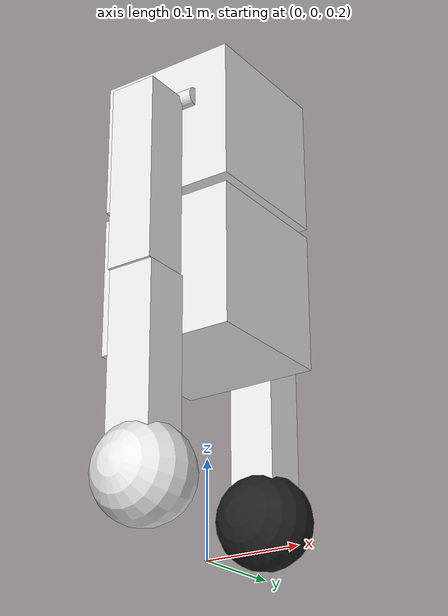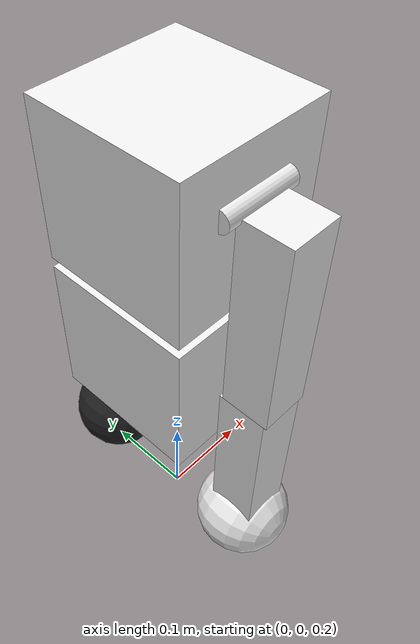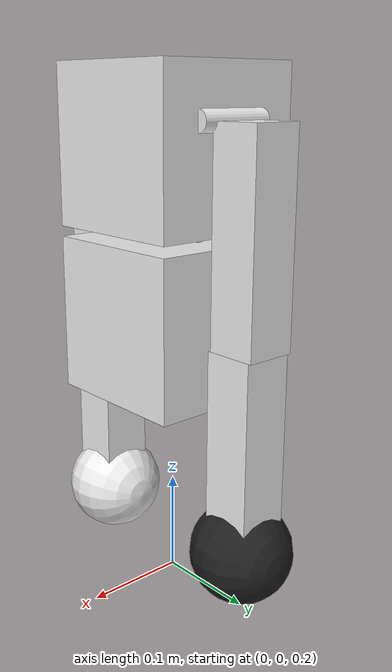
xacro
<?xml version="1.0"?>
<robot name = "human" xmlns:xacro="http://www.ros.org/wiki/xacro">

<xacro:property name ="PI" value ="3.1415926535897931"/>
<xacro:property name ="body_mass" value ="10" />
<xacro:property name ="upperarm_mass" value ="5" />
<xacro:property name ="a" value ="0.15" />
<xacro:property name ="b" value ="0.15" />
<xacro:property name ="c" value ="0.15" />
<xacro:property name ="Lc" value = "0.4" />

<xacro:include filename="/home/zheng/robot_ws_zheng/src/ur_description/urdf/simplehumanArm.urdf.xacro" />

<!-- **************************** Joint Properties ********************************* -->

<joint name="world_joint" type="fixed">
    <parent link = "world"/>
    <child link="base_corps_link_1"/>
    <origin rpy ="0. 0. 0." xyz = "0. 0. ${Lc}"/>
</joint>

<joint name="joint_chest_z" type="revolute">
    <parent link = "base_corps_link_1"/>
    <child link="link_virtual"/>
    <origin rpy ="0. 0. 0." xyz = "0.0 0.0 ${c+0.01}"/>
    <axis xyz="0 0 1"/>
    <limit lower="-${PI/2}" upper="${PI/2}" effort="100.0" velocity="10.0"/>

</joint>

<joint name="joint_chest_y" type="revolute">
    <parent link = "link_virtual"/>
    <child link="base_corps_link_2"/>
    <origin rpy ="0. 0. 0." xyz = "0.0 0.0 0."/>
    <axis xyz="0 1 0"/>
    <limit lower="-1.57" upper="1.57" effort="100.0" velocity="10.0"/>

</joint>

<!-- **************************** Link Properties ********************************* -->

<link name="world"/>

<link name="base_corps_link_1">
  <visual>
    <geometry>
      <box size="${a} ${b} ${c}"/>
    </geometry>
    <origin xyz="0.0 0.0 ${c/2}" rpy="0.0 0.0 0.0"/>
  </visual>

  <collision>
    <origin xyz="0.0 0.0 ${c/2}" rpy="0.0 0.0 0.0"/>
    <geometry>
      <box size="${a} ${b} ${c}"/>
    </geometry>
  </collision>

  <inertial>
    <mass value="${body_mass}"/>
    <inertia ixx="${body_mass / 12.0 * (b*b + c*c)}" ixy="0.0" ixz="0.0"
             iyy="${body_mass / 12.0 * (a*a + c*c)}" iyz="0.0"
             izz= "${body_mass / 12.0 * (a*a + b*b)}"/>
  </inertial>
</link>

<link name="link_virtual">
  <visual>
    <geometry>
      <cylinder radius="0.01" length="0.075"/>
    </geometry>
    <origin xyz="0.0 0.0 0.0" rpy="-1.57 0.0 0.0"/>
  </visual>
  <inertial>
    <mass value="0.01"/>
    <inertia ixx="0.01" ixy="0.0" ixz="0.0" iyy="0.01" iyz="0.0" izz="0.01"/>
  </inertial>
</link>

<link name="base_corps_link_2">
  <visual>
    <geometry>
      <box size=" ${a}  ${b}  ${c}"/>
    </geometry>
    <origin xyz="0. 0. ${c/2}" rpy="0.0 0.0 0.0"/>
  </visual>

  <collision>
    <origin xyz="0. 0.  ${c/2}" rpy="0.0 0.0 0.0"/>
    <geometry>
      <box size="${a} ${b} ${c}"/>
    </geometry>
  </collision>

  <inertial>
    <mass value="${body_mass}"/>
    <inertia ixx="${body_mass / 12.0 * (b*b + c*c)}" ixy="0.0" ixz="0.0"
             iyy="${body_mass / 12.0 * (a*a + c*c)}" iyz="0.0"
             izz= "${body_mass / 12.0 * (a*a + b*b)}"/>
  </inertial>
</link>

    <!-- Import gazebo element -->
    <gazebo reference="base_corps_link_1">
        <material>Gazebo/White</material>
    </gazebo>
    <gazebo reference="link_virtual">
        <material>Gazebo/White</material>
    </gazebo>
    <gazebo reference="base_corps_link_2">
        <material>Gazebo/White</material>
    </gazebo>

     <transmission name="tran1">
    <type>transmission_interface/SimpleTransmission</type>
    <joint name="joint_chest_z">
      <hardwareInterface>hardware_interface/PositionJointInterface</hardwareInterface>
    </joint>
    <actuator name="motor1">
      <hardwareInterface>hardware_interface/PositionJointInterface</hardwareInterface>
      <mechanicalReduction>1</mechanicalReduction>
    </actuator>
  </transmission>

  <transmission name="tran2">
    <type>transmission_interface/SimpleTransmission</type>
    <joint name="joint_chest_y">
      <hardwareInterface>hardware_interface/PositionJointInterface</hardwareInterface>
    </joint>
    <actuator name="motor2">
      <hardwareInterface>hardware_interface/PositionJointInterface</hardwareInterface>
      <mechanicalReduction>1</mechanicalReduction>
    </actuator>
  </transmission>
</robot>

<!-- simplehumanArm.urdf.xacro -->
<!-- An very simplyfied human upper-body -->

<robot name = "human_arm" xmlns:xacro="http://www.ros.org/wiki/xacro">
 <!-- Constants for human dimension-->

    <xacro:property name ="forearm_mass" value ="5" />
    <xacro:property name ="hand_mass" value ="3" />
    <xacro:property name ="arm_a" value ="0.2" />
    <xacro:property name ="arm_b" value ="0.05" />
    <xacro:property name ="arm_c" value ="0.05" />

    <xacro:property name ="L1" value ="0.2" />

    <!-- **************************** Joint Properties ********************************* -->

<joint name="joint1" type="revolute">
  <origin xyz="0.00 ${b/2} ${c - 0.05}" rpy="0. ${PI/2} 0.0"/>
  <parent link="base_corps_link_2"/>
  <child link="left_shoulder_psi_link"/>
  <axis xyz="0 0 1"/>
  <limit lower="-${PI/2}" upper="${PI/2}" effort="100.0" velocity="10.0"/>
</joint>

<joint name="joint2" type="revolute">
  <origin xyz="0.0 0. 0." rpy="0. 0. 0.0"/>
  <parent link="left_shoulder_psi_link"/>
  <child link="left_arm_shoulder"/>
  <axis xyz="0 -1 0"/>
  <limit lower="-${PI/2}" upper="${PI/2}" effort="100.0" velocity="10.0"/>
</joint>

<joint name="joint3" type="revolute">
  <origin xyz="${L1} 0.025 0." rpy="${PI/2} 0. 0.0"/>
  <parent link="left_arm_shoulder"/>
  <child link="left_forearm"/>
  <axis xyz="0 0 1"/>
  <limit lower="-${PI/2}" upper="${PI/2}" effort="100.0" velocity="10.0"/>
</joint>

<joint name="joint4" type="fixed">
    <parent link = "left_forearm"/>
    <child link="left_hand"/>
    <origin rpy ="0 0. 0." xyz = "${arm_a} 0.0 0."/>
</joint>

<!-- **************************** Link Properties ********************************* -->

<link name="left_shoulder_psi_link" >
  <visual>
    <geometry>
      <cylinder radius="0.01" length="0.075"/>
    </geometry>
    <origin xyz="0.0 0.0 0.0" rpy="0 0.0 0.0"/>
  </visual>
  <inertial>
    <mass value="0.01"/>
    <inertia ixx="0.01" ixy="0.0" ixz="0.0" iyy="0.01" iyz="0.0" izz="0.01"/>
  </inertial>
</link>

<link name="left_arm_shoulder">
  <visual>
    <geometry>
      <box size="${arm_a} ${arm_b} ${arm_c}"/>
    </geometry>
    <origin xyz="0.1 0.03 0" rpy="0.0 0.0 0.0"/>
  </visual>

  <collision>
    <geometry>
      <box size="${arm_a} ${arm_b} ${arm_c}"/>
    </geometry>
    <origin xyz="0.1 0.03 0" rpy="0.0 0.0 0.0"/>
  </collision>
  <inertial>
    <mass value="${forearm_mass}"/>
    <inertia ixx="${forearm_mass / 12.0 * (arm_b*arm_b + arm_c*arm_c)}" ixy="0.0" ixz="0.0"
             iyy="${forearm_mass / 12.0 * (arm_a*arm_a + arm_c*arm_c)}" iyz="0.0"
             izz= "${forearm_mass / 12.0 * (arm_a*arm_a + arm_b*arm_b)}"/>
  </inertial>
</link>

<link name="left_forearm">
  <visual>
    <geometry>
      <box size="${arm_a} ${arm_b} ${arm_c}"/>
    </geometry>
    <origin xyz="0.1 0.0 -0.002" rpy="0.0 0.0 0.0"/>
  </visual>

 <inertial>
    <mass value="${forearm_mass}"/>
    <inertia ixx="${forearm_mass / 12.0 * (arm_b*arm_b + arm_c*arm_c)}" ixy="0.0" ixz="0.0"
             iyy="${forearm_mass / 12.0 * (arm_a*arm_a + arm_c*arm_c)}" iyz="0.0"
             izz= "${forearm_mass / 12.0 * (arm_a*arm_a + arm_b*arm_b)}"/>
  </inertial>

  <collision>
    <geometry>
      <box size="${arm_a} ${arm_b} ${arm_c}"/>
    </geometry>
    <origin xyz="0.1 0.0 -0.002" rpy="0.0 0.0 0.0"/>
  </collision>
</link>

<link name="left_hand">
  <visual>
    <geometry>
      <sphere radius="0.05"/>
    </geometry>
    <origin xyz="0. 0.0 0.0" rpy="0.0 0.0 0.0"/>
  </visual>

 <inertial>
    <mass value="${hand_mass}"/>
    <inertia ixx="${2/5 * hand_mass*0.05*0.05}" ixy="0.0" ixz="0.0"
             iyy="${2/5 * hand_mass*0.05*0.05}" iyz="0.0"
             izz= "${2/5 * hand_mass*0.05*0.05}"/>
  </inertial>

  <collision>
    <geometry>
      <sphere radius="0.05"/>
    </geometry>
    <origin xyz="0. 0.0 0.0" rpy="0.0 0.0 0.0"/>
  </collision>
</link>

    <!-- Import gazebo element -->

    <gazebo reference="left_shoulder_psi_link">
        <material>Gazebo/White</material>
    </gazebo>
    <gazebo reference="left_arm_shoulder">
        <material>Gazebo/White</material>
    </gazebo>
    <gazebo reference="left_forearm">
        <material>Gazebo/White</material>
    </gazebo>

    <gazebo reference="left_hand">
        <material>Gazebo/Black</material>
    </gazebo>

     <!-- **************************** Joint Properties ********************************* -->

<joint name="joint5" type="revolute">
  <origin xyz="0.00 -${b/2} ${c - 0.05}" rpy="${PI} ${PI/2} 0.0"/>
  <parent link="base_corps_link_2"/>
  <child link="right_shoulder_psi_link"/>
  <axis xyz="0 0 1"/>
  <limit lower="-${PI/2}" upper="${PI/2}" effort="100.0" velocity="10.0"/>
</joint>

<joint name="joint6" type="revolute">
  <origin xyz="0.0 0. 0." rpy="0. 0. 0.0"/>
  <parent link="right_shoulder_psi_link"/>
  <child link="right_arm_shoulder"/>
  <axis xyz="0 1 0"/>
  <limit lower="-${PI/2}" upper="${PI/2}" effort="100.0" velocity="10.0"/>
</joint>

<joint name="joint7" type="revolute">
  <origin xyz="${L1} 0.025 0." rpy="${PI/2} 0. 0.0"/>
  <parent link="right_arm_shoulder"/>
  <child link="right_forearm"/>
  <axis xyz="0 0 -1"/>
  <limit lower="-${PI/2}" upper="${PI/2}" effort="100.0" velocity="10.0"/>
</joint>

<joint name="joint8" type="fixed">
    <parent link = "right_forearm"/>
    <child link="right_hand"/>
    <origin rpy ="0 0. 0." xyz = "${arm_a} 0.0 0."/>
</joint>

<!-- **************************** Link Properties ********************************* -->

<link name="right_shoulder_psi_link" >
  <visual>
    <geometry>
      <cylinder radius="0.01" length="0.075"/>
    </geometry>
    <origin xyz="0.0 0.0 0.0" rpy="0 0.0 0.0"/>
  </visual>
  <inertial>
    <mass value="0.01"/>
    <inertia ixx="0.01" ixy="0.0" ixz="0.0" iyy="0.01" iyz="0.0" izz="0.01"/>
  </inertial>
</link>

<link name="right_arm_shoulder">
  <visual>
    <geometry>
      <box size="${arm_a} ${arm_b} ${arm_c}"/>
    </geometry>
    <origin xyz="0.1 0.03 0" rpy="0.0 0.0 0.0"/>
  </visual>

  <collision>
    <geometry>
      <box size="${arm_a} ${arm_b} ${arm_c}"/>
    </geometry>
    <origin xyz="0.1 0.03 0" rpy="0.0 0.0 0.0"/>
  </collision>
  <inertial>
    <mass value="${forearm_mass}"/>
    <inertia ixx="${forearm_mass / 12.0 * (arm_b*arm_b + arm_c*arm_c)}" ixy="0.0" ixz="0.0"
             iyy="${forearm_mass / 12.0 * (arm_a*arm_a + arm_c*arm_c)}" iyz="0.0"
             izz= "${forearm_mass / 12.0 * (arm_a*arm_a + arm_b*arm_b)}"/>
  </inertial>
</link>

<link name="right_forearm">
  <visual>
    <geometry>
      <box size="${arm_a} ${arm_b} ${arm_c}"/>
    </geometry>
    <origin xyz="0.1 0.0 -0.002" rpy="0.0 0.0 0.0"/>
  </visual>

 <inertial>
    <mass value="${forearm_mass}"/>
    <inertia ixx="${forearm_mass / 12.0 * (arm_b*arm_b + arm_c*arm_c)}" ixy="0.0" ixz="0.0"
             iyy="${forearm_mass / 12.0 * (arm_a*arm_a + arm_c*arm_c)}" iyz="0.0"
             izz= "${forearm_mass / 12.0 * (arm_a*arm_a + arm_b*arm_b)}"/>
  </inertial>

  <collision>
    <geometry>
      <box size="${arm_a} ${arm_b} ${arm_c}"/>
    </geometry>
    <origin xyz="0.1 0.0 -0.002" rpy="0.0 0.0 0.0"/>
  </collision>
</link>

<link name="right_hand">
  <visual>
    <geometry>
      <sphere radius="0.05"/>
    </geometry>
    <origin xyz="0. 0.0 0.0" rpy="0.0 0.0 0.0"/>
  </visual>

  <inertial>
    <mass value="${hand_mass}"/>
    <inertia ixx="${2/5 * hand_mass*0.05*0.05}" ixy="0.0" ixz="0.0"
             iyy="${2/5 * hand_mass*0.05*0.05}" iyz="0.0"
             izz= "${2/5 * hand_mass*0.05*0.05}"/>
  </inertial>

  <collision>
    <geometry>
      <sphere radius="0.05"/>
    </geometry>
    <origin xyz="0. 0.0 0.0" rpy="0.0 0.0 0.0"/>
  </collision>
</link>

    <!-- Import gazebo element -->

    <gazebo reference="right_shoulder_psi_link">
        <material>Gazebo/White</material>
    </gazebo>
    <gazebo reference="right_arm_shoulder">
        <material>Gazebo/White</material>
    </gazebo>
    <gazebo reference="right_forearm">
        <material>Gazebo/White</material>
    </gazebo>

    <gazebo reference="right_hand">
        <material>Gazebo/White</material>
    </gazebo>

  <transmission name="tran3">
    <type>transmission_interface/SimpleTransmission</type>
    <joint name="joint1">
     <hardwareInterface>hardware_interface/PositionJointInterface</hardwareInterface>
    </joint>
    <actuator name="motor3">
      <hardwareInterface>hardware_interface/PositionJointInterface</hardwareInterface>
      <mechanicalReduction>1</mechanicalReduction>
    </actuator>
  </transmission>

  <transmission name="tran4">
    <type>transmission_interface/SimpleTransmission</type>
    <joint name="joint2">
      <hardwareInterface>hardware_interface/PositionJointInterface</hardwareInterface>
    </joint>
    <actuator name="motor4">
      <hardwareInterface>hardware_interface/PositionJointInterface</hardwareInterface>
      <mechanicalReduction>1</mechanicalReduction>
    </actuator>
  </transmission>

  <transmission name="tran5">
    <type>transmission_interface/SimpleTransmission</type>
    <joint name="joint3">
      <hardwareInterface>hardware_interface/PositionJointInterface</hardwareInterface>
    </joint>
    <actuator name="motor5">
      <hardwareInterface>hardware_interface/PositionJointInterface</hardwareInterface>
      <mechanicalReduction>1</mechanicalReduction>
    </actuator>
  </transmission>

  <transmission name="tran6">
    <type>transmission_interface/SimpleTransmission</type>
    <joint name="joint5">
     <hardwareInterface>hardware_interface/PositionJointInterface</hardwareInterface>
    </joint>
    <actuator name="motor6">
      <hardwareInterface>hardware_interface/PositionJointInterface</hardwareInterface>
      <mechanicalReduction>1</mechanicalReduction>
    </actuator>
  </transmission>

  <transmission name="tran7">
    <type>transmission_interface/SimpleTransmission</type>
    <joint name="joint6">
      <hardwareInterface>hardware_interface/PositionJointInterface</hardwareInterface>
    </joint>
    <actuator name="motor7">
      <hardwareInterface>hardware_interface/PositionJointInterface</hardwareInterface>
      <mechanicalReduction>1</mechanicalReduction>
    </actuator>
  </transmission>

  <transmission name="tran8">
    <type>transmission_interface/SimpleTransmission</type>
    <joint name="joint7">
      <hardwareInterface>hardware_interface/PositionJointInterface</hardwareInterface>
    </joint>
    <actuator name="motor8">
      <hardwareInterface>hardware_interface/PositionJointInterface</hardwareInterface>
      <mechanicalReduction>1</mechanicalReduction>
    </actuator>
  </transmission>

   <gazebo>
    <plugin filename="libgazebo_ros_control.so" name="gazebo_ros_control">
      <robotNamespace>/human</robotNamespace>
      <robotSimType>gazebo_ros_control/DefaultRobotHWSim</robotSimType>
    </plugin>
  </gazebo>
</robot>
